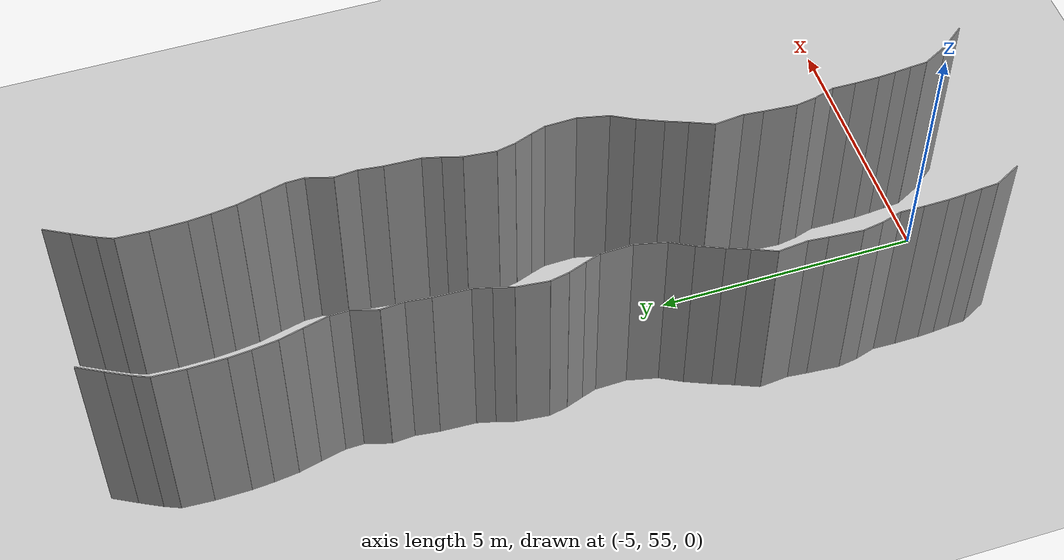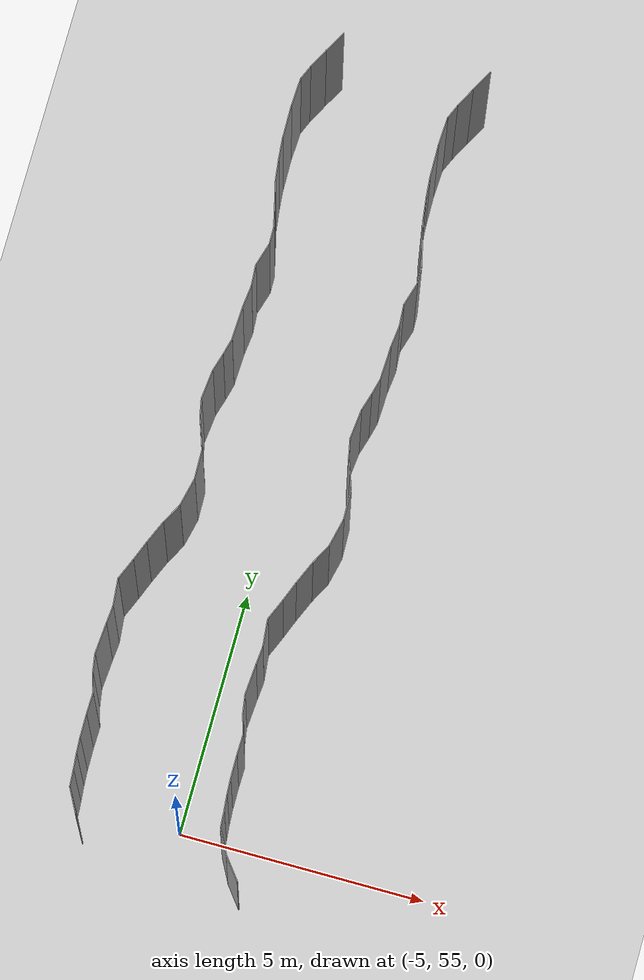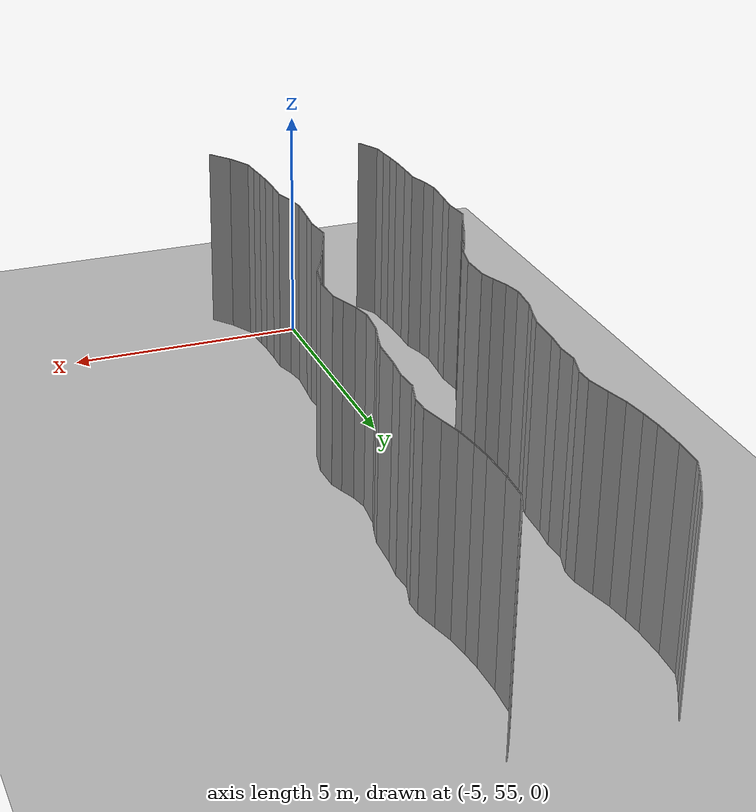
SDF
<sdf version="1.6">
 <world name="default">
  <model name="ground_plane">
   <static>1</static>
   <link name="link">
    <collision name="collision">
     <geometry><plane><normal>0 0 1</normal><size>200 200</size></plane></geometry>
     <surface><friction><ode><mu>100</mu><mu2>50</mu2></ode></friction></surface>
    </collision>
    <visual name="visual">
     <cast_shadows>0</cast_shadows>
     <geometry><plane><normal>0 0 1</normal><size>200 200</size></plane></geometry>
     <material>
      <script><uri>file://media/materials/scripts/gazebo.material</uri><name>Gazebo/Grey</name></script>
     </material>
    </visual>
   </link>
   <pose>0 100 0 0 -0 0</pose>
  </model>
  <model name="wall_225">
   <static>1</static>
   <pose>-3.638130687132862 54.08529775657432 2 0 0 0.6596353758319379</pose>
   <link name="link">
    <collision name="collision"><geometry><box><size>0.02 0.550800175091 4</size></box></geometry></collision>
    <visual name="visual">
     <material>
      <script><name>Gazebo/Grey</name><uri>file://media/materials/scripts/gazebo.material</uri></script>
     </material>
     <geometry><box><size>0.02 0.550800175091 4</size></box></geometry>
    </visual>
   </link>
  </model>
  <model name="wall_226">
   <static>1</static>
   <pose>-6.935105048181353 54.54567880128718 2 0 0 0.4858806989716454</pose>
   <link name="link">
    <collision name="collision"><geometry><box><size>0.02 0.549056745855 4</size></box></geometry></collision>
    <visual name="visual">
     <material>
      <script><name>Gazebo/Grey</name><uri>file://media/materials/scripts/gazebo.material</uri></script>
     </material>
     <geometry><box><size>0.02 0.549056745855 4</size></box></geometry>
    </visual>
   </link>
  </model>
  <model name="wall_227">
   <static>1</static>
   <pose>-3.935105048181353 54.54567880128718 2 0 0 0.4858806989716454</pose>
   <link name="link">
    <collision name="collision"><geometry><box><size>0.02 0.549056745855 4</size></box></geometry></collision>
    <visual name="visual">
     <material>
      <script><name>Gazebo/Grey</name><uri>file://media/materials/scripts/gazebo.material</uri></script>
     </material>
     <geometry><box><size>0.02 0.549056745855 4</size></box></geometry>
    </visual>
   </link>
  </model>
  <model name="wall_228">
   <static>1</static>
   <pose>-7.074596602279948 54.95048716078881 2 0 0 0.06955802726587106</pose>
   <link name="link">
    <collision name="collision"><geometry><box><size>0.02 0.324891242353 4</size></box></geometry></collision>
    <visual name="visual">
     <material>
      <script><name>Gazebo/Grey</name><uri>file://media/materials/scripts/gazebo.material</uri></script>
     </material>
     <geometry><box><size>0.02 0.324891242353 4</size></box></geometry>
    </visual>
   </link>
  </model>
  <model name="wall_229">
   <static>1</static>
   <pose>-4.074596602279948 54.95048716078881 2 0 0 0.06955802726587106</pose>
   <link name="link">
    <collision name="collision"><geometry><box><size>0.02 0.324891242353 4</size></box></geometry></collision>
    <visual name="visual">
     <material>
      <script><name>Gazebo/Grey</name><uri>file://media/materials/scripts/gazebo.material</uri></script>
     </material>
     <geometry><box><size>0.02 0.324891242353 4</size></box></geometry>
    </visual>
   </link>
  </model>
  <model name="wall_230">
   <static>1</static>
   <pose>-7.10073553774238 55.271629299060365 2 0 0 0.09306565762791605</pose>
   <link name="link">
    <collision name="collision"><geometry><box><size>0.02 0.319561578573 4</size></box></geometry></collision>
    <visual name="visual">
     <material>
      <script><name>Gazebo/Grey</name><uri>file://media/materials/scripts/gazebo.material</uri></script>
     </material>
     <geometry><box><size>0.02 0.319561578573 4</size></box></geometry>
    </visual>
   </link>
  </model>
  <model name="wall_231">
   <static>1</static>
   <pose>-4.10073553774238 55.271629299060365 2 0 0 0.09306565762791605</pose>
   <link name="link">
    <collision name="collision"><geometry><box><size>0.02 0.319561578573 4</size></box></geometry></collision>
    <visual name="visual">
     <material>
      <script><name>Gazebo/Grey</name><uri>file://media/materials/scripts/gazebo.material</uri></script>
     </material>
     <geometry><box><size>0.02 0.319561578573 4</size></box></geometry>
    </visual>
   </link>
  </model>
  <model name="wall_232">
   <static>1</static>
   <pose>-7.125083559750093 55.59070897137717 2 0 0 0.05930505039597447</pose>
   <link name="link">
    <collision name="collision"><geometry><box><size>0.02 0.320544189555 4</size></box></geometry></collision>
    <visual name="visual">
     <material>
      <script><name>Gazebo/Grey</name><uri>file://media/materials/scripts/gazebo.material</uri></script>
     </material>
     <geometry><box><size>0.02 0.320544189555 4</size></box></geometry>
    </visual>
   </link>
  </model>
  <model name="wall_233">
   <static>1</static>
   <pose>-4.125083559750093 55.59070897137717 2 0 0 0.05930505039597447</pose>
   <link name="link">
    <collision name="collision"><geometry><box><size>0.02 0.320544189555 4</size></box></geometry></collision>
    <visual name="visual">
     <material>
      <script><name>Gazebo/Grey</name><uri>file://media/materials/scripts/gazebo.material</uri></script>
     </material>
     <geometry><box><size>0.02 0.320544189555 4</size></box></geometry>
    </visual>
   </link>
  </model>
  <model name="wall_234">
   <static>1</static>
   <pose>-7.137358837849364 55.98362180462784 2 0 0 0.011917151222205265</pose>
   <link name="link">
    <collision name="collision"><geometry><box><size>0.02 0.465878084235 4</size></box></geometry></collision>
    <visual name="visual">
     <material>
      <script><name>Gazebo/Grey</name><uri>file://media/materials/scripts/gazebo.material</uri></script>
     </material>
     <geometry><box><size>0.02 0.465878084235 4</size></box></geometry>
    </visual>
   </link>
  </model>
  <model name="wall_235">
   <static>1</static>
   <pose>-4.137358837849364 55.98362180462784 2 0 0 0.011917151222205265</pose>
   <link name="link">
    <collision name="collision"><geometry><box><size>0.02 0.465878084235 4</size></box></geometry></collision>
    <visual name="visual">
     <material>
      <script><name>Gazebo/Grey</name><uri>file://media/materials/scripts/gazebo.material</uri></script>
     </material>
     <geometry><box><size>0.02 0.465878084235 4</size></box></geometry>
    </visual>
   </link>
  </model>
  <model name="wall_236">
   <static>1</static>
   <pose>-7.13599887805993 56.432847506057335 2 0 0 -0.01911834850849215</pose>
   <link name="link">
    <collision name="collision"><geometry><box><size>0.02 0.432685473179 4</size></box></geometry></collision>
    <visual name="visual">
     <material>
      <script><name>Gazebo/Grey</name><uri>file://media/materials/scripts/gazebo.material</uri></script>
     </material>
     <geometry><box><size>0.02 0.432685473179 4</size></box></geometry>
    </visual>
   </link>
  </model>
  <model name="wall_237">
   <static>1</static>
   <pose>-4.13599887805993 56.432847506057335 2 0 0 -0.01911834850849215</pose>
   <link name="link">
    <collision name="collision"><geometry><box><size>0.02 0.432685473179 4</size></box></geometry></collision>
    <visual name="visual">
     <material>
      <script><name>Gazebo/Grey</name><uri>file://media/materials/scripts/gazebo.material</uri></script>
     </material>
     <geometry><box><size>0.02 0.432685473179 4</size></box></geometry>
    </visual>
   </link>
  </model>
  <model name="wall_238">
   <static>1</static>
   <pose>-7.1888871574401625 56.840833128471594 2 0 0 0.2891550395618706</pose>
   <link name="link">
    <collision name="collision"><geometry><box><size>0.02 0.399969518832 4</size></box></geometry></collision>
    <visual name="visual">
     <material>
      <script><name>Gazebo/Grey</name><uri>file://media/materials/scripts/gazebo.material</uri></script>
     </material>
     <geometry><box><size>0.02 0.399969518832 4</size></box></geometry>
    </visual>
   </link>
  </model>
  <model name="wall_239">
   <static>1</static>
   <pose>-4.1888871574401625 56.840833128471594 2 0 0 0.2891550395618706</pose>
   <link name="link">
    <collision name="collision"><geometry><box><size>0.02 0.399969518832 4</size></box></geometry></collision>
    <visual name="visual">
     <material>
      <script><name>Gazebo/Grey</name><uri>file://media/materials/scripts/gazebo.material</uri></script>
     </material>
     <geometry><box><size>0.02 0.399969518832 4</size></box></geometry>
    </visual>
   </link>
  </model>
  <model name="wall_240">
   <static>1</static>
   <pose>-7.276132871147668 57.21981788967388 2 0 0 0.15997304621024003</pose>
   <link name="link">
    <collision name="collision"><geometry><box><size>0.02 0.379449651018 4</size></box></geometry></collision>
    <visual name="visual">
     <material>
      <script><name>Gazebo/Grey</name><uri>file://media/materials/scripts/gazebo.material</uri></script>
     </material>
     <geometry><box><size>0.02 0.379449651018 4</size></box></geometry>
    </visual>
   </link>
  </model>
  <model name="wall_241">
   <static>1</static>
   <pose>-4.276132871147668 57.21981788967388 2 0 0 0.15997304621024003</pose>
   <link name="link">
    <collision name="collision"><geometry><box><size>0.02 0.379449651018 4</size></box></geometry></collision>
    <visual name="visual">
     <material>
      <script><name>Gazebo/Grey</name><uri>file://media/materials/scripts/gazebo.material</uri></script>
     </material>
     <geometry><box><size>0.02 0.379449651018 4</size></box></geometry>
    </visual>
   </link>
  </model>
  <model name="wall_242">
   <static>1</static>
   <pose>-7.283072094913445 57.71862841831578 2 0 0 -0.07460201394129261</pose>
   <link name="link">
    <collision name="collision"><geometry><box><size>0.02 0.624754095783 4</size></box></geometry></collision>
    <visual name="visual">
     <material>
      <script><name>Gazebo/Grey</name><uri>file://media/materials/scripts/gazebo.material</uri></script>
     </material>
     <geometry><box><size>0.02 0.624754095783 4</size></box></geometry>
    </visual>
   </link>
  </model>
  <model name="wall_243">
   <static>1</static>
   <pose>-4.283072094913445 57.71862841831578 2 0 0 -0.07460201394129261</pose>
   <link name="link">
    <collision name="collision"><geometry><box><size>0.02 0.624754095783 4</size></box></geometry></collision>
    <visual name="visual">
     <material>
      <script><name>Gazebo/Grey</name><uri>file://media/materials/scripts/gazebo.material</uri></script>
     </material>
     <geometry><box><size>0.02 0.624754095783 4</size></box></geometry>
    </visual>
   </link>
  </model>
  <model name="wall_244">
   <static>1</static>
   <pose>-7.2429957323804866 58.21332622833624 2 0 0 -0.09142004725762569</pose>
   <link name="link">
    <collision name="collision"><geometry><box><size>0.02 0.367915620129 4</size></box></geometry></collision>
    <visual name="visual">
     <material>
      <script><name>Gazebo/Grey</name><uri>file://media/materials/scripts/gazebo.material</uri></script>
     </material>
     <geometry><box><size>0.02 0.367915620129 4</size></box></geometry>
    </visual>
   </link>
  </model>
  <model name="wall_245">
   <static>1</static>
   <pose>-4.2429957323804866 58.21332622833624 2 0 0 -0.09142004725762569</pose>
   <link name="link">
    <collision name="collision"><geometry><box><size>0.02 0.367915620129 4</size></box></geometry></collision>
    <visual name="visual">
     <material>
      <script><name>Gazebo/Grey</name><uri>file://media/materials/scripts/gazebo.material</uri></script>
     </material>
     <geometry><box><size>0.02 0.367915620129 4</size></box></geometry>
    </visual>
   </link>
  </model>
  <model name="wall_246">
   <static>1</static>
   <pose>-7.253673039476583 58.67207410655155 2 0 0 0.09936501889451504</pose>
   <link name="link">
    <collision name="collision"><geometry><box><size>0.02 0.5538484529 4</size></box></geometry></collision>
    <visual name="visual">
     <material>
      <script><name>Gazebo/Grey</name><uri>file://media/materials/scripts/gazebo.material</uri></script>
     </material>
     <geometry><box><size>0.02 0.5538484529 4</size></box></geometry>
    </visual>
   </link>
  </model>
  <model name="wall_247">
   <static>1</static>
   <pose>-4.253673039476583 58.67207410655155 2 0 0 0.09936501889451504</pose>
   <link name="link">
    <collision name="collision"><geometry><box><size>0.02 0.5538484529 4</size></box></geometry></collision>
    <visual name="visual">
     <material>
      <script><name>Gazebo/Grey</name><uri>file://media/materials/scripts/gazebo.material</uri></script>
     </material>
     <geometry><box><size>0.02 0.5538484529 4</size></box></geometry>
    </visual>
   </link>
  </model>
  <model name="wall_248">
   <static>1</static>
   <pose>-7.189767721739942 59.16358119816629 2 0 0 -0.40029435780410844</pose>
   <link name="link">
    <collision name="collision"><geometry><box><size>0.02 0.468971594684 4</size></box></geometry></collision>
    <visual name="visual">
     <material>
      <script><name>Gazebo/Grey</name><uri>file://media/materials/scripts/gazebo.material</uri></script>
     </material>
     <geometry><box><size>0.02 0.468971594684 4</size></box></geometry>
    </visual>
   </link>
  </model>
  <model name="wall_249">
   <static>1</static>
   <pose>-4.189767721739942 59.16358119816629 2 0 0 -0.40029435780410844</pose>
   <link name="link">
    <collision name="collision"><geometry><box><size>0.02 0.468971594684 4</size></box></geometry></collision>
    <visual name="visual">
     <material>
      <script><name>Gazebo/Grey</name><uri>file://media/materials/scripts/gazebo.material</uri></script>
     </material>
     <geometry><box><size>0.02 0.468971594684 4</size></box></geometry>
    </visual>
   </link>
  </model>
  <model name="wall_250">
   <static>1</static>
   <pose>-7.021349240740751 59.576791377007375 2 0 0 -0.37233962830154577</pose>
   <link name="link">
    <collision name="collision"><geometry><box><size>0.02 0.423544488916 4</size></box></geometry></collision>
    <visual name="visual">
     <material>
      <script><name>Gazebo/Grey</name><uri>file://media/materials/scripts/gazebo.material</uri></script>
     </material>
     <geometry><box><size>0.02 0.423544488916 4</size></box></geometry>
    </visual>
   </link>
  </model>
  <model name="wall_251">
   <static>1</static>
   <pose>-4.021349240740751 59.576791377007375 2 0 0 -0.37233962830154577</pose>
   <link name="link">
    <collision name="collision"><geometry><box><size>0.02 0.423544488916 4</size></box></geometry></collision>
    <visual name="visual">
     <material>
      <script><name>Gazebo/Grey</name><uri>file://media/materials/scripts/gazebo.material</uri></script>
     </material>
     <geometry><box><size>0.02 0.423544488916 4</size></box></geometry>
    </visual>
   </link>
  </model>
  <model name="wall_252">
   <static>1</static>
   <pose>-6.842500436882045 60.01070829959073 2 0 0 -0.406258757623369</pose>
   <link name="link">
    <collision name="collision"><geometry><box><size>0.02 0.515249532046 4</size></box></geometry></collision>
    <visual name="visual">
     <material>
      <script><name>Gazebo/Grey</name><uri>file://media/materials/scripts/gazebo.material</uri></script>
     </material>
     <geometry><box><size>0.02 0.515249532046 4</size></box></geometry>
    </visual>
   </link>
  </model>
  <model name="wall_253">
   <static>1</static>
   <pose>-3.8425004368820446 60.01070829959073 2 0 0 -0.406258757623369</pose>
   <link name="link">
    <collision name="collision"><geometry><box><size>0.02 0.515249532046 4</size></box></geometry></collision>
    <visual name="visual">
     <material>
      <script><name>Gazebo/Grey</name><uri>file://media/materials/scripts/gazebo.material</uri></script>
     </material>
     <geometry><box><size>0.02 0.515249532046 4</size></box></geometry>
    </visual>
   </link>
  </model>
  <model name="wall_254">
   <static>1</static>
   <pose>-6.630845968955268 60.45158559919317 2 0 0 -0.49349318485066435</pose>
   <link name="link">
    <collision name="collision"><geometry><box><size>0.02 0.463780060378 4</size></box></geometry></collision>
    <visual name="visual">
     <material>
      <script><name>Gazebo/Grey</name><uri>file://media/materials/scripts/gazebo.material</uri></script>
     </material>
     <geometry><box><size>0.02 0.463780060378 4</size></box></geometry>
    </visual>
   </link>
  </model>
  <model name="wall_255">
   <static>1</static>
   <pose>-3.630845968955268 60.45158559919317 2 0 0 -0.49349318485066435</pose>
   <link name="link">
    <collision name="collision"><geometry><box><size>0.02 0.463780060378 4</size></box></geometry></collision>
    <visual name="visual">
     <material>
      <script><name>Gazebo/Grey</name><uri>file://media/materials/scripts/gazebo.material</uri></script>
     </material>
     <geometry><box><size>0.02 0.463780060378 4</size></box></geometry>
    </visual>
   </link>
  </model>
  <model name="wall_256">
   <static>1</static>
   <pose>-6.454798630328191 60.94567923403311 2 0 0 -0.22452558714075777</pose>
   <link name="link">
    <collision name="collision"><geometry><box><size>0.02 0.594670139497 4</size></box></geometry></collision>
    <visual name="visual">
     <material>
      <script><name>Gazebo/Grey</name><uri>file://media/materials/scripts/gazebo.material</uri></script>
     </material>
     <geometry><box><size>0.02 0.594670139497 4</size></box></geometry>
    </visual>
   </link>
  </model>
  <model name="wall_257">
   <static>1</static>
   <pose>-3.454798630328191 60.94567923403311 2 0 0 -0.22452558714075777</pose>
   <link name="link">
    <collision name="collision"><geometry><box><size>0.02 0.594670139497 4</size></box></geometry></collision>
    <visual name="visual">
     <material>
      <script><name>Gazebo/Grey</name><uri>file://media/materials/scripts/gazebo.material</uri></script>
     </material>
     <geometry><box><size>0.02 0.594670139497 4</size></box></geometry>
    </visual>
   </link>
  </model>
  <model name="wall_258">
   <static>1</static>
   <pose>-6.397072765981305 61.5355189976937 2 0 0 0.028242082439620522</pose>
   <link name="link">
    <collision name="collision"><geometry><box><size>0.02 0.60017504081 4</size></box></geometry></collision>
    <visual name="visual">
     <material>
      <script><name>Gazebo/Grey</name><uri>file://media/materials/scripts/gazebo.material</uri></script>
     </material>
     <geometry><box><size>0.02 0.60017504081 4</size></box></geometry>
    </visual>
   </link>
  </model>
  <model name="wall_259">
   <static>1</static>
   <pose>-3.3970727659813047 61.5355189976937 2 0 0 0.028242082439620522</pose>
   <link name="link">
    <collision name="collision"><geometry><box><size>0.02 0.60017504081 4</size></box></geometry></collision>
    <visual name="visual">
     <material>
      <script><name>Gazebo/Grey</name><uri>file://media/materials/scripts/gazebo.material</uri></script>
     </material>
     <geometry><box><size>0.02 0.60017504081 4</size></box></geometry>
    </visual>
   </link>
  </model>
  <model name="wall_260">
   <static>1</static>
   <pose>-6.453389969845169 61.97950976701781 2 0 0 0.32072283249984246</pose>
   <link name="link">
    <collision name="collision"><geometry><box><size>0.02 0.303523152262 4</size></box></geometry></collision>
    <visual name="visual">
     <material>
      <script><name>Gazebo/Grey</name><uri>file://media/materials/scripts/gazebo.material</uri></script>
     </material>
     <geometry><box><size>0.02 0.303523152262 4</size></box></geometry>
    </visual>
   </link>
  </model>
  <model name="wall_261">
   <static>1</static>
   <pose>-3.453389969845169 61.97950976701781 2 0 0 0.32072283249984246</pose>
   <link name="link">
    <collision name="collision"><geometry><box><size>0.02 0.303523152262 4</size></box></geometry></collision>
    <visual name="visual">
     <material>
      <script><name>Gazebo/Grey</name><uri>file://media/materials/scripts/gazebo.material</uri></script>
     </material>
     <geometry><box><size>0.02 0.303523152262 4</size></box></geometry>
    </visual>
   </link>
  </model>
  <model name="wall_262">
   <static>1</static>
   <pose>-6.561278614805555 62.2883377070819 2 0 0 0.3493941940658889</pose>
   <link name="link">
    <collision name="collision"><geometry><box><size>0.02 0.350805624974 4</size></box></geometry></collision>
    <visual name="visual">
     <material>
      <script><name>Gazebo/Grey</name><uri>file://media/materials/scripts/gazebo.material</uri></script>
     </material>
     <geometry><box><size>0.02 0.350805624974 4</size></box></geometry>
    </visual>
   </link>
  </model>
  <model name="wall_263">
   <static>1</static>
   <pose>-3.5612786148055546 62.2883377070819 2 0 0 0.3493941940658889</pose>
   <link name="link">
    <collision name="collision"><geometry><box><size>0.02 0.350805624974 4</size></box></geometry></collision>
    <visual name="visual">
     <material>
      <script><name>Gazebo/Grey</name><uri>file://media/materials/scripts/gazebo.material</uri></script>
     </material>
     <geometry><box><size>0.02 0.350805624974 4</size></box></geometry>
    </visual>
   </link>
  </model>
  <model name="wall_264">
   <static>1</static>
   <pose>-6.657600626778719 62.63149404697237 2 0 0 0.2006623354305943</pose>
   <link name="link">
    <collision name="collision"><geometry><box><size>0.02 0.364006507653 4</size></box></geometry></collision>
    <visual name="visual">
     <material>
      <script><name>Gazebo/Grey</name><uri>file://media/materials/scripts/gazebo.material</uri></script>
     </material>
     <geometry><box><size>0.02 0.364006507653 4</size></box></geometry>
    </visual>
   </link>
  </model>
  <model name="wall_265">
   <static>1</static>
   <pose>-3.657600626778719 62.63149404697237 2 0 0 0.2006623354305943</pose>
   <link name="link">
    <collision name="collision"><geometry><box><size>0.02 0.364006507653 4</size></box></geometry></collision>
    <visual name="visual">
     <material>
      <script><name>Gazebo/Grey</name><uri>file://media/materials/scripts/gazebo.material</uri></script>
     </material>
     <geometry><box><size>0.02 0.364006507653 4</size></box></geometry>
    </visual>
   </link>
  </model>
  <model name="wall_266">
   <static>1</static>
   <pose>-6.663267989677765 63.11114241593786 2 0 0 -0.10124420703793625</pose>
   <link name="link">
    <collision name="collision"><geometry><box><size>0.02 0.6056957599 4</size></box></geometry></collision>
    <visual name="visual">
     <material>
      <script><name>Gazebo/Grey</name><uri>file://media/materials/scripts/gazebo.material</uri></script>
     </material>
     <geometry><box><size>0.02 0.6056957599 4</size></box></geometry>
    </visual>
   </link>
  </model>
  <model name="wall_267">
   <static>1</static>
   <pose>-3.663267989677765 63.11114241593786 2 0 0 -0.10124420703793625</pose>
   <link name="link">
    <collision name="collision"><geometry><box><size>0.02 0.6056957599 4</size></box></geometry></collision>
    <visual name="visual">
     <material>
      <script><name>Gazebo/Grey</name><uri>file://media/materials/scripts/gazebo.material</uri></script>
     </material>
     <geometry><box><size>0.02 0.6056957599 4</size></box></geometry>
    </visual>
   </link>
  </model>
  <model name="wall_268">
   <static>1</static>
   <pose>-6.579107648142319 63.59117813059486 2 0 0 -0.29109491458441616</pose>
   <link name="link">
    <collision name="collision"><geometry><box><size>0.02 0.373176797622 4</size></box></geometry></collision>
    <visual name="visual">
     <material>
      <script><name>Gazebo/Grey</name><uri>file://media/materials/scripts/gazebo.material</uri></script>
     </material>
     <geometry><box><size>0.02 0.373176797622 4</size></box></geometry>
    </visual>
   </link>
  </model>
  <model name="wall_269">
   <static>1</static>
   <pose>-3.579107648142319 63.59117813059486 2 0 0 -0.29109491458441616</pose>
   <link name="link">
    <collision name="collision"><geometry><box><size>0.02 0.373176797622 4</size></box></geometry></collision>
    <visual name="visual">
     <material>
      <script><name>Gazebo/Grey</name><uri>file://media/materials/scripts/gazebo.material</uri></script>
     </material>
     <geometry><box><size>0.02 0.373176797622 4</size></box></geometry>
    </visual>
   </link>
  </model>
  <model name="wall_270">
   <static>1</static>
   <pose>-6.482240965041226 63.940941717213455 2 0 0 -0.24805446960462263</pose>
   <link name="link">
    <collision name="collision"><geometry><box><size>0.02 0.352849904126 4</size></box></geometry></collision>
    <visual name="visual">
     <material>
      <script><name>Gazebo/Grey</name><uri>file://media/materials/scripts/gazebo.material</uri></script>
     </material>
     <geometry><box><size>0.02 0.352849904126 4</size></box></geometry>
    </visual>
   </link>
  </model>
  <model name="wall_271">
   <static>1</static>
   <pose>-3.4822409650412256 63.940941717213455 2 0 0 -0.24805446960462263</pose>
   <link name="link">
    <collision name="collision"><geometry><box><size>0.02 0.352849904126 4</size></box></geometry></collision>
    <visual name="visual">
     <material>
      <script><name>Gazebo/Grey</name><uri>file://media/materials/scripts/gazebo.material</uri></script>
     </material>
     <geometry><box><size>0.02 0.352849904126 4</size></box></geometry>
    </visual>
   </link>
  </model>
  <model name="wall_272">
   <static>1</static>
   <pose>-6.425953543486768 64.44980362773045 2 0 0 -0.03837789576752908</pose>
   <link name="link">
    <collision name="collision"><geometry><box><size>0.02 0.676171868244 4</size></box></geometry></collision>
    <visual name="visual">
     <material>
      <script><name>Gazebo/Grey</name><uri>file://media/materials/scripts/gazebo.material</uri></script>
     </material>
     <geometry><box><size>0.02 0.676171868244 4</size></box></geometry>
    </visual>
   </link>
  </model>
  <model name="wall_273">
   <static>1</static>
   <pose>-3.4259535434867683 64.44980362773045 2 0 0 -0.03837789576752908</pose>
   <link name="link">
    <collision name="collision"><geometry><box><size>0.02 0.676171868244 4</size></box></geometry></collision>
    <visual name="visual">
     <material>
      <script><name>Gazebo/Grey</name><uri>file://media/materials/scripts/gazebo.material</uri></script>
     </material>
     <geometry><box><size>0.02 0.676171868244 4</size></box></geometry>
    </visual>
   </link>
  </model>
  <model name="wall_274">
   <static>1</static>
   <pose>-6.387011572160514 65.01568293232498 2 0 0 -0.11339440735163421</pose>
   <link name="link">
    <collision name="collision"><geometry><box><size>0.02 0.459032661048 4</size></box></geometry></collision>
    <visual name="visual">
     <material>
      <script><name>Gazebo/Grey</name><uri>file://media/materials/scripts/gazebo.material</uri></script>
     </material>
     <geometry><box><size>0.02 0.459032661048 4</size></box></geometry>
    </visual>
   </link>
  </model>
  <model name="wall_275">
   <static>1</static>
   <pose>-3.387011572160514 65.01568293232498 2 0 0 -0.11339440735163421</pose>
   <link name="link">
    <collision name="collision"><geometry><box><size>0.02 0.459032661048 4</size></box></geometry></collision>
    <visual name="visual">
     <material>
      <script><name>Gazebo/Grey</name><uri>file://media/materials/scripts/gazebo.material</uri></script>
     </material>
     <geometry><box><size>0.02 0.459032661048 4</size></box></geometry>
    </visual>
   </link>
  </model>
  <model name="wall_276">
   <static>1</static>
   <pose>-6.376556639681929 65.45899565278728 2 0 0 0.07194865350650825</pose>
   <link name="link">
    <collision name="collision"><geometry><box><size>0.02 0.431657586202 4</size></box></geometry></collision>
    <visual name="visual">
     <material>
      <script><name>Gazebo/Grey</name><uri>file://media/materials/scripts/gazebo.material</uri></script>
     </material>
     <geometry><box><size>0.02 0.431657586202 4</size></box></geometry>
    </visual>
   </link>
  </model>
  <model name="wall_277">
   <static>1</static>
   <pose>-3.3765566396819287 65.45899565278728 2 0 0 0.07194865350650825</pose>
   <link name="link">
    <collision name="collision"><geometry><box><size>0.02 0.431657586202 4</size></box></geometry></collision>
    <visual name="visual">
     <material>
      <script><name>Gazebo/Grey</name><uri>file://media/materials/scripts/gazebo.material</uri></script>
     </material>
     <geometry><box><size>0.02 0.431657586202 4</size></box></geometry>
    </visual>
   </link>
  </model>
  <model name="wall_278">
   <static>1</static>
   <pose>-6.320375225733301 65.91711083916216 2 0 0 -0.28708077736970666</pose>
   <link name="link">
    <collision name="collision"><geometry><box><size>0.02 0.506414820536 4</size></box></geometry></collision>
    <visual name="visual">
     <material>
      <script><name>Gazebo/Grey</name><uri>file://media/materials/scripts/gazebo.material</uri></script>
     </material>
     <geometry><box><size>0.02 0.506414820536 4</size></box></geometry>
    </visual>
   </link>
  </model>
  <model name="wall_279">
   <static>1</static>
   <pose>-3.320375225733301 65.91711083916216 2 0 0 -0.28708077736970666</pose>
   <link name="link">
    <collision name="collision"><geometry><box><size>0.02 0.506414820536 4</size></box></geometry></collision>
    <visual name="visual">
     <material>
      <script><name>Gazebo/Grey</name><uri>file://media/materials/scripts/gazebo.material</uri></script>
     </material>
     <geometry><box><size>0.02 0.506414820536 4</size></box></geometry>
    </visual>
   </link>
  </model>
  <model name="wall_280">
   <static>1</static>
   <pose>-6.252806889496785 66.33207957114747 2 0 0 0.023979715551857933</pose>
   <link name="link">
    <collision name="collision"><geometry><box><size>0.02 0.344346897688 4</size></box></geometry></collision>
    <visual name="visual">
     <material>
      <script><name>Gazebo/Grey</name><uri>file://media/materials/scripts/gazebo.material</uri></script>
     </material>
     <geometry><box><size>0.02 0.344346897688 4</size></box></geometry>
    </visual>
   </link>
  </model>
  <model name="wall_281">
   <static>1</static>
   <pose>-3.252806889496785 66.33207957114747 2 0 0 0.023979715551857933</pose>
   <link name="link">
    <collision name="collision"><geometry><box><size>0.02 0.344346897688 4</size></box></geometry></collision>
    <visual name="visual">
     <material>
      <script><name>Gazebo/Grey</name><uri>file://media/materials/scripts/gazebo.material</uri></script>
     </material>
     <geometry><box><size>0.02 0.344346897688 4</size></box></geometry>
    </visual>
   </link>
  </model>
  <model name="wall_282">
   <static>1</static>
   <pose>-6.3132942331586035 66.74399869975831 2 0 0 0.23084042159046236</pose>
   <link name="link">
    <collision name="collision"><geometry><box><size>0.02 0.492658391999 4</size></box></geometry></collision>
    <visual name="visual">
     <material>
      <script><name>Gazebo/Grey</name><uri>file://media/materials/scripts/gazebo.material</uri></script>
     </material>
     <geometry><box><size>0.02 0.492658391999 4</size></box></geometry>
    </visual>
   </link>
  </model>
  <model name="wall_283">
   <static>1</static>
   <pose>-3.3132942331586035 66.74399869975831 2 0 0 0.23084042159046236</pose>
   <link name="link">
    <collision name="collision"><geometry><box><size>0.02 0.492658391999 4</size></box></geometry></collision>
    <visual name="visual">
     <material>
      <script><name>Gazebo/Grey</name><uri>file://media/materials/scripts/gazebo.material</uri></script>
     </material>
     <geometry><box><size>0.02 0.492658391999 4</size></box></geometry>
    </visual>
   </link>
  </model>
  <model name="wall_284">
   <static>1</static>
   <pose>-6.423157424146778 67.19961498863607 2 0 0 0.24301024955093142</pose>
   <link name="link">
    <collision name="collision"><geometry><box><size>0.02 0.444708634026 4</size></box></geometry></collision>
    <visual name="visual">
     <material>
      <script><name>Gazebo/Grey</name><uri>file://media/materials/scripts/gazebo.material</uri></script>
     </material>
     <geometry><box><size>0.02 0.444708634026 4</size></box></geometry>
    </visual>
   </link>
  </model>
  <model name="wall_285">
   <static>1</static>
   <pose>-3.423157424146778 67.19961498863607 2 0 0 0.24301024955093142</pose>
   <link name="link">
    <collision name="collision"><geometry><box><size>0.02 0.444708634026 4</size></box></geometry></collision>
    <visual name="visual">
     <material>
      <script><name>Gazebo/Grey</name><uri>file://media/materials/scripts/gazebo.material</uri></script>
     </material>
     <geometry><box><size>0.02 0.444708634026 4</size></box></geometry>
    </visual>
   </link>
  </model>
  <model name="wall_286">
   <static>1</static>
   <pose>-6.506693559939897 67.64950321651453 2 0 0 0.1276079489469724</pose>
   <link name="link">
    <collision name="collision"><geometry><box><size>0.02 0.471971769694 4</size></box></geometry></collision>
    <visual name="visual">
     <material>
      <script><name>Gazebo/Grey</name><uri>file://media/materials/scripts/gazebo.material</uri></script>
     </material>
     <geometry><box><size>0.02 0.471971769694 4</size></box></geometry>
    </visual>
   </link>
  </model>
  <model name="wall_287">
   <static>1</static>
   <pose>-3.5066935599398974 67.64950321651453 2 0 0 0.1276079489469724</pose>
   <link name="link">
    <collision name="collision"><geometry><box><size>0.02 0.471971769694 4</size></box></geometry></collision>
    <visual name="visual">
     <material>
      <script><name>Gazebo/Grey</name><uri>file://media/materials/scripts/gazebo.material</uri></script>
     </material>
     <geometry><box><size>0.02 0.471971769694 4</size></box></geometry>
    </visual>
   </link>
  </model>
  <model name="wall_288">
   <static>1</static>
   <pose>-6.5544898800094975 68.0883727337016 2 0 0 0.08652220788316843</pose>
   <link name="link">
    <collision name="collision"><geometry><box><size>0.02 0.411142763808 4</size></box></geometry></collision>
    <visual name="visual">
     <material>
      <script><name>Gazebo/Grey</name><uri>file://media/materials/scripts/gazebo.material</uri></script>
     </material>
     <geometry><box><size>0.02 0.411142763808 4</size></box></geometry>
    </visual>
   </link>
  </model>
  <model name="wall_289">
   <static>1</static>
   <pose>-3.5544898800094975 68.0883727337016 2 0 0 0.08652220788316843</pose>
   <link name="link">
    <collision name="collision"><geometry><box><size>0.02 0.411142763808 4</size></box></geometry></collision>
    <visual name="visual">
     <material>
      <script><name>Gazebo/Grey</name><uri>file://media/materials/scripts/gazebo.material</uri></script>
     </material>
     <geometry><box><size>0.02 0.411142763808 4</size></box></geometry>
    </visual>
   </link>
  </model>
  <model name="wall_290">
   <static>1</static>
   <pose>-6.577948941637522 68.63016772441749 2 0 0 0.016897147041841504</pose>
   <link name="link">
    <collision name="collision"><geometry><box><size>0.02 0.674081411597 4</size></box></geometry></collision>
    <visual name="visual">
     <material>
      <script><name>Gazebo/Grey</name><uri>file://media/materials/scripts/gazebo.material</uri></script>
     </material>
     <geometry><box><size>0.02 0.674081411597 4</size></box></geometry>
    </visual>
   </link>
  </model>
  <model name="wall_291">
   <static>1</static>
   <pose>-3.577948941637522 68.63016772441749 2 0 0 0.016897147041841504</pose>
   <link name="link">
    <collision name="collision"><geometry><box><size>0.02 0.674081411597 4</size></box></geometry></collision>
    <visual name="visual">
     <material>
      <script><name>Gazebo/Grey</name><uri>file://media/materials/scripts/gazebo.material</uri></script>
     </material>
     <geometry><box><size>0.02 0.674081411597 4</size></box></geometry>
    </visual>
   </link>
  </model>
  <model name="wall_292">
   <static>1</static>
   <pose>-6.56920188128703 69.26362669928294 2 0 0 -0.04867468775601806</pose>
   <link name="link">
    <collision name="collision"><geometry><box><size>0.02 0.593635855233 4</size></box></geometry></collision>
    <visual name="visual">
     <material>
      <script><name>Gazebo/Grey</name><uri>file://media/materials/scripts/gazebo.material</uri></script>
     </material>
     <geometry><box><size>0.02 0.593635855233 4</size></box></geometry>
    </visual>
   </link>
  </model>
  <model name="wall_293">
   <static>1</static>
   <pose>-3.5692018812870296 69.26362669928294 2 0 0 -0.04867468775601806</pose>
   <link name="link">
    <collision name="collision"><geometry><box><size>0.02 0.593635855233 4</size></box></geometry></collision>
    <visual name="visual">
     <material>
      <script><name>Gazebo/Grey</name><uri>file://media/materials/scripts/gazebo.material</uri></script>
     </material>
     <geometry><box><size>0.02 0.593635855233 4</size></box></geometry>
    </visual>
   </link>
  </model>
  <model name="wall_294">
   <static>1</static>
   <pose>-6.493218881222308 69.70354926752334 2 0 0 -0.40524485496853346</pose>
   <link name="link">
    <collision name="collision"><geometry><box><size>0.02 0.312198619601 4</size></box></geometry></collision>
    <visual name="visual">
     <material>
      <script><name>Gazebo/Grey</name><uri>file://media/materials/scripts/gazebo.material</uri></script>
     </material>
     <geometry><box><size>0.02 0.312198619601 4</size></box></geometry>
    </visual>
   </link>
  </model>
  <model name="wall_295">
   <static>1</static>
   <pose>-3.493218881222308 69.70354926752334 2 0 0 -0.40524485496853346</pose>
   <link name="link">
    <collision name="collision"><geometry><box><size>0.02 0.312198619601 4</size></box></geometry></collision>
    <visual name="visual">
     <material>
      <script><name>Gazebo/Grey</name><uri>file://media/materials/scripts/gazebo.material</uri></script>
     </material>
     <geometry><box><size>0.02 0.312198619601 4</size></box></geometry>
    </visual>
   </link>
  </model>
  <model name="wall_296">
   <static>1</static>
   <pose>-6.327044446990795 70.04871485108707 2 0 0 -0.47852117256132626</pose>
   <link name="link">
    <collision name="collision"><geometry><box><size>0.02 0.454465832648 4</size></box></geometry></collision>
    <visual name="visual">
     <material>
      <script><name>Gazebo/Grey</name><uri>file://media/materials/scripts/gazebo.material</uri></script>
     </material>
     <geometry><box><size>0.02 0.454465832648 4</size></box></geometry>
    </visual>
   </link>
  </model>
  <model name="wall_297">
   <static>1</static>
   <pose>-3.3270444469907954 70.04871485108707 2 0 0 -0.47852117256132626</pose>
   <link name="link">
    <collision name="collision"><geometry><box><size>0.02 0.454465832648 4</size></box></geometry></collision>
    <visual name="visual">
     <material>
      <script><name>Gazebo/Grey</name><uri>file://media/materials/scripts/gazebo.material</uri></script>
     </material>
     <geometry><box><size>0.02 0.454465832648 4</size></box></geometry>
    </visual>
   </link>
  </model>
  <model name="wall_298">
   <static>1</static>
   <pose>-6.101573290246449 70.47064904739783 2 0 0 -0.5018465371563985</pose>
   <link name="link">
    <collision name="collision"><geometry><box><size>0.02 0.502397298893 4</size></box></geometry></collision>
    <visual name="visual">
     <material>
      <script><name>Gazebo/Grey</name><uri>file://media/materials/scripts/gazebo.material</uri></script>
     </material>
     <geometry><box><size>0.02 0.502397298893 4</size></box></geometry>
    </visual>
   </link>
  </model>
  <model name="wall_299">
   <static>1</static>
   <pose>-3.1015732902464492 70.47064904739783 2 0 0 -0.5018465371563985</pose>
   <link name="link">
    <collision name="collision"><geometry><box><size>0.02 0.502397298893 4</size></box></geometry></collision>
    <visual name="visual">
     <material>
      <script><name>Gazebo/Grey</name><uri>file://media/materials/scripts/gazebo.material</uri></script>
     </material>
     <geometry><box><size>0.02 0.502397298893 4</size></box></geometry>
    </visual>
   </link>
  </model>
 </world>
</sdf>
